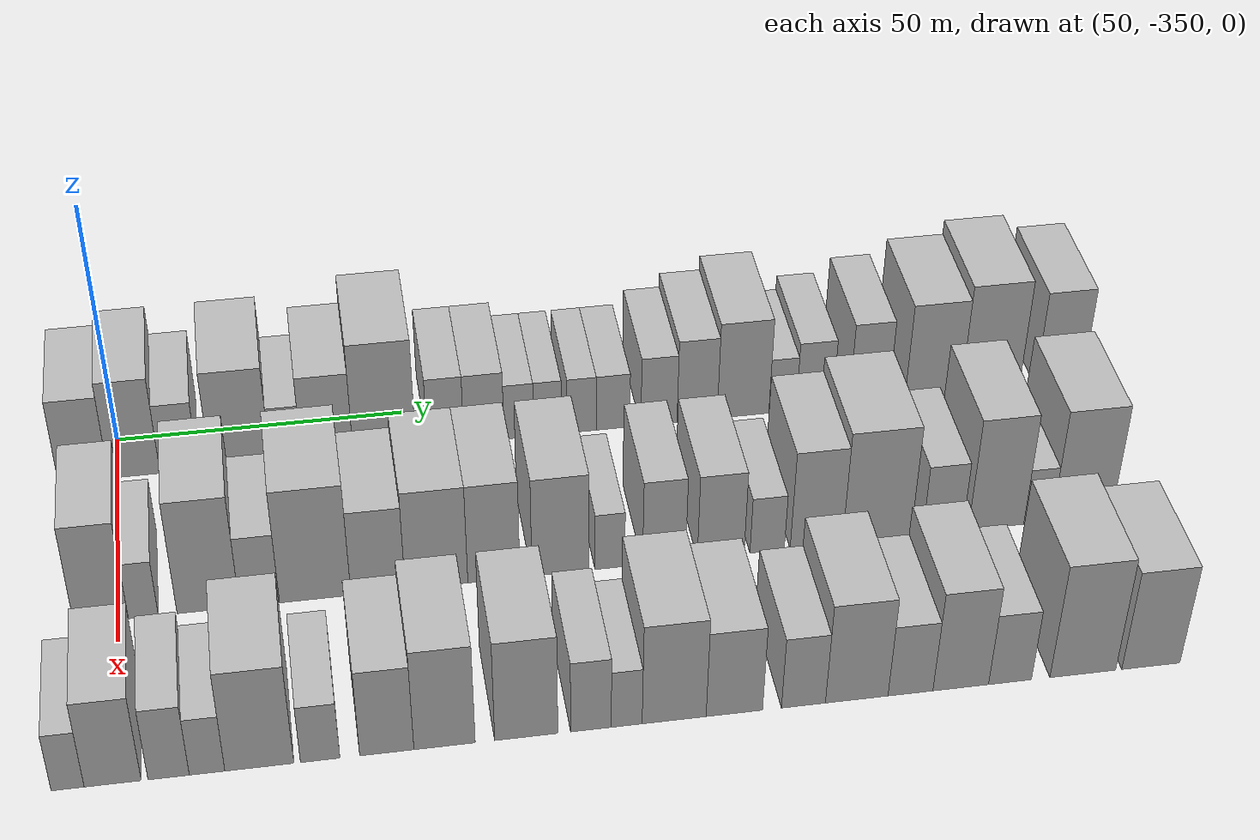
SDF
<sdf version="1.6">
 <world name="default">
  <model name="building_1">
   <static>1</static>
   <pose>50.0000 -355.7108 0 0.000000 0.000000 0.000000</pose>
   <link name="link">
    <pose>0 0 9.00 0 0 0</pose>
    <collision name="collision"><geometry><box><size>20.0000 8.5783 18.0000</size></box></geometry></collision>
    <visual name="visual">
     <cast_shadows>0</cast_shadows>
     <geometry><box><size>20.0000 8.5783 18.0000</size></box></geometry>
     <material>
      <script>
       <uri>model://HANNAS_wall/materials/scripts</uri>
       <uri>model://HANNAS_wall/materials/textures</uri>
       <name>vrc/HANNAS_wall</name>
      </script>
     </material>
    </visual>
   </link>
  </model>
  <model name="building_2">
   <static>1</static>
   <pose>50.0000 -347.0402 0 0.000000 0.000000 0.000000</pose>
   <link name="link">
    <pose>0 0 10.50 0 0 0</pose>
    <collision name="collision"><geometry><box><size>20.0000 8.7629 21.0000</size></box></geometry></collision>
    <visual name="visual">
     <cast_shadows>0</cast_shadows>
     <geometry><box><size>20.0000 8.7629 21.0000</size></box></geometry>
     <material>
      <script>
       <uri>model://HANNAS_wall/materials/scripts</uri>
       <uri>model://HANNAS_wall/materials/textures</uri>
       <name>vrc/HANNAS_wall</name>
      </script>
     </material>
    </visual>
   </link>
  </model>
  <model name="building_3">
   <static>1</static>
   <pose>50.0000 -339.3646 0 0.000000 0.000000 0.000000</pose>
   <link name="link">
    <pose>0 0 7.50 0 0 0</pose>
    <collision name="collision"><geometry><box><size>20.0000 6.5883 15.0000</size></box></geometry></collision>
    <visual name="visual">
     <cast_shadows>0</cast_shadows>
     <geometry><box><size>20.0000 6.5883 15.0000</size></box></geometry>
     <material>
      <script>
       <uri>model://HANNAS_wall/materials/scripts</uri>
       <uri>model://HANNAS_wall/materials/textures</uri>
       <name>vrc/HANNAS_wall</name>
      </script>
     </material>
    </visual>
   </link>
  </model>
  <model name="building_4">
   <static>1</static>
   <pose>50.0000 -328.8616 0 0.000000 0.000000 0.000000</pose>
   <link name="link">
    <pose>0 0 10.50 0 0 0</pose>
    <collision name="collision"><geometry><box><size>20.0000 10.4178 21.0000</size></box></geometry></collision>
    <visual name="visual">
     <cast_shadows>0</cast_shadows>
     <geometry><box><size>20.0000 10.4178 21.0000</size></box></geometry>
     <material>
      <script>
       <uri>model://HANNAS_wall/materials/scripts</uri>
       <uri>model://HANNAS_wall/materials/textures</uri>
       <name>vrc/HANNAS_wall</name>
      </script>
     </material>
    </visual>
   </link>
  </model>
  <model name="building_5">
   <static>1</static>
   <pose>50.0000 -320.9417 0 0.000000 0.000000 0.000000</pose>
   <link name="link">
    <pose>0 0 6.00 0 0 0</pose>
    <collision name="collision"><geometry><box><size>20.0000 5.4220 12.0000</size></box></geometry></collision>
    <visual name="visual">
     <cast_shadows>0</cast_shadows>
     <geometry><box><size>20.0000 5.4220 12.0000</size></box></geometry>
     <material>
      <script>
       <uri>model://HANNAS_wall/materials/scripts</uri>
       <uri>model://HANNAS_wall/materials/textures</uri>
       <name>vrc/HANNAS_wall</name>
      </script>
     </material>
    </visual>
   </link>
  </model>
  <model name="building_6">
   <static>1</static>
   <pose>50.0000 -313.7510 0 0.000000 0.000000 0.000000</pose>
   <link name="link">
    <pose>0 0 9.00 0 0 0</pose>
    <collision name="collision"><geometry><box><size>20.0000 8.9593 18.0000</size></box></geometry></collision>
    <visual name="visual">
     <cast_shadows>0</cast_shadows>
     <geometry><box><size>20.0000 8.9593 18.0000</size></box></geometry>
     <material>
      <script>
       <uri>model://HANNAS_wall/materials/scripts</uri>
       <uri>model://HANNAS_wall/materials/textures</uri>
       <name>vrc/HANNAS_wall</name>
      </script>
     </material>
    </visual>
   </link>
  </model>
  <model name="building_7">
   <static>1</static>
   <pose>50.0000 -303.7959 0 0.000000 0.000000 0.000000</pose>
   <link name="link">
    <pose>0 0 12.00 0 0 0</pose>
    <collision name="collision"><geometry><box><size>20.0000 10.9510 24.0000</size></box></geometry></collision>
    <visual name="visual">
     <cast_shadows>0</cast_shadows>
     <geometry><box><size>20.0000 10.9510 24.0000</size></box></geometry>
     <material>
      <script>
       <uri>model://HANNAS_wall/materials/scripts</uri>
       <uri>model://HANNAS_wall/materials/textures</uri>
       <name>vrc/HANNAS_wall</name>
      </script>
     </material>
    </visual>
   </link>
  </model>
  <model name="building_8">
   <static>1</static>
   <pose>50.0000 -293.0944 0 0.000000 0.000000 0.000000</pose>
   <link name="link">
    <pose>0 0 7.50 0 0 0</pose>
    <collision name="collision"><geometry><box><size>20.0000 6.4519 15.0000</size></box></geometry></collision>
    <visual name="visual">
     <cast_shadows>0</cast_shadows>
     <geometry><box><size>20.0000 6.4519 15.0000</size></box></geometry>
     <material>
      <script>
       <uri>model://HANNAS_wall/materials/scripts</uri>
       <uri>model://HANNAS_wall/materials/textures</uri>
       <name>vrc/HANNAS_wall</name>
      </script>
     </material>
    </visual>
   </link>
  </model>
  <model name="building_9">
   <static>1</static>
   <pose>50.0000 -286.3283 0 0.000000 0.000000 0.000000</pose>
   <link name="link">
    <pose>0 0 7.50 0 0 0</pose>
    <collision name="collision"><geometry><box><size>20.0000 7.0803 15.0000</size></box></geometry></collision>
    <visual name="visual">
     <cast_shadows>0</cast_shadows>
     <geometry><box><size>20.0000 7.0803 15.0000</size></box></geometry>
     <material>
      <script>
       <uri>model://HANNAS_wall/materials/scripts</uri>
       <uri>model://HANNAS_wall/materials/textures</uri>
       <name>vrc/HANNAS_wall</name>
      </script>
     </material>
    </visual>
   </link>
  </model>
  <model name="building_10">
   <static>1</static>
   <pose>50.0000 -280.1579 0 0.000000 0.000000 0.000000</pose>
   <link name="link">
    <pose>0 0 6.00 0 0 0</pose>
    <collision name="collision"><geometry><box><size>20.0000 5.2603 12.0000</size></box></geometry></collision>
    <visual name="visual">
     <cast_shadows>0</cast_shadows>
     <geometry><box><size>20.0000 5.2603 12.0000</size></box></geometry>
     <material>
      <script>
       <uri>model://HANNAS_wall/materials/scripts</uri>
       <uri>model://HANNAS_wall/materials/textures</uri>
       <name>vrc/HANNAS_wall</name>
      </script>
     </material>
    </visual>
   </link>
  </model>
  <model name="building_11">
   <static>1</static>
   <pose>50.0000 -275.0595 0 0.000000 0.000000 0.000000</pose>
   <link name="link">
    <pose>0 0 6.00 0 0 0</pose>
    <collision name="collision"><geometry><box><size>20.0000 4.9366 12.0000</size></box></geometry></collision>
    <visual name="visual">
     <cast_shadows>0</cast_shadows>
     <geometry><box><size>20.0000 4.9366 12.0000</size></box></geometry>
     <material>
      <script>
       <uri>model://HANNAS_wall/materials/scripts</uri>
       <uri>model://HANNAS_wall/materials/textures</uri>
       <name>vrc/HANNAS_wall</name>
      </script>
     </material>
    </visual>
   </link>
  </model>
  <model name="building_12">
   <static>1</static>
   <pose>50.0000 -269.0004 0 0.000000 0.000000 0.000000</pose>
   <link name="link">
    <pose>0 0 6.00 0 0 0</pose>
    <collision name="collision"><geometry><box><size>20.0000 5.1815 12.0000</size></box></geometry></collision>
    <visual name="visual">
     <cast_shadows>0</cast_shadows>
     <geometry><box><size>20.0000 5.1815 12.0000</size></box></geometry>
     <material>
      <script>
       <uri>model://HANNAS_wall/materials/scripts</uri>
       <uri>model://HANNAS_wall/materials/textures</uri>
       <name>vrc/HANNAS_wall</name>
      </script>
     </material>
    </visual>
   </link>
  </model>
  <model name="building_13">
   <static>1</static>
   <pose>50.0000 -263.4154 0 0.000000 0.000000 0.000000</pose>
   <link name="link">
    <pose>0 0 6.00 0 0 0</pose>
    <collision name="collision"><geometry><box><size>20.0000 5.9884 12.0000</size></box></geometry></collision>
    <visual name="visual">
     <cast_shadows>0</cast_shadows>
     <geometry><box><size>20.0000 5.9884 12.0000</size></box></geometry>
     <material>
      <script>
       <uri>model://HANNAS_wall/materials/scripts</uri>
       <uri>model://HANNAS_wall/materials/textures</uri>
       <name>vrc/HANNAS_wall</name>
      </script>
     </material>
    </visual>
   </link>
  </model>
  <model name="building_14">
   <static>1</static>
   <pose>50.0000 -255.1728 0 0.000000 0.000000 0.000000</pose>
   <link name="link">
    <pose>0 0 7.50 0 0 0</pose>
    <collision name="collision"><geometry><box><size>20.0000 6.4968 15.0000</size></box></geometry></collision>
    <visual name="visual">
     <cast_shadows>0</cast_shadows>
     <geometry><box><size>20.0000 6.4968 15.0000</size></box></geometry>
     <material>
      <script>
       <uri>model://HANNAS_wall/materials/scripts</uri>
       <uri>model://HANNAS_wall/materials/textures</uri>
       <name>vrc/HANNAS_wall</name>
      </script>
     </material>
    </visual>
   </link>
  </model>
  <model name="building_15">
   <static>1</static>
   <pose>50.0000 -248.3059 0 0.000000 0.000000 0.000000</pose>
   <link name="link">
    <pose>0 0 9.00 0 0 0</pose>
    <collision name="collision"><geometry><box><size>20.0000 7.2370 18.0000</size></box></geometry></collision>
    <visual name="visual">
     <cast_shadows>0</cast_shadows>
     <geometry><box><size>20.0000 7.2370 18.0000</size></box></geometry>
     <material>
      <script>
       <uri>model://HANNAS_wall/materials/scripts</uri>
       <uri>model://HANNAS_wall/materials/textures</uri>
       <name>vrc/HANNAS_wall</name>
      </script>
     </material>
    </visual>
   </link>
  </model>
  <model name="building_16">
   <static>1</static>
   <pose>50.0000 -240.0128 0 0.000000 0.000000 0.000000</pose>
   <link name="link">
    <pose>0 0 10.50 0 0 0</pose>
    <collision name="collision"><geometry><box><size>20.0000 9.3492 21.0000</size></box></geometry></collision>
    <visual name="visual">
     <cast_shadows>0</cast_shadows>
     <geometry><box><size>20.0000 9.3492 21.0000</size></box></geometry>
     <material>
      <script>
       <uri>model://HANNAS_wall/materials/scripts</uri>
       <uri>model://HANNAS_wall/materials/textures</uri>
       <name>vrc/HANNAS_wall</name>
      </script>
     </material>
    </visual>
   </link>
  </model>
  <model name="building_17">
   <static>1</static>
   <pose>50.0000 -232.8654 0 0.000000 0.000000 0.000000</pose>
   <link name="link">
    <pose>0 0 6.00 0 0 0</pose>
    <collision name="collision"><geometry><box><size>20.0000 4.9455 12.0000</size></box></geometry></collision>
    <visual name="visual">
     <cast_shadows>0</cast_shadows>
     <geometry><box><size>20.0000 4.9455 12.0000</size></box></geometry>
     <material>
      <script>
       <uri>model://HANNAS_wall/materials/scripts</uri>
       <uri>model://HANNAS_wall/materials/textures</uri>
       <name>vrc/HANNAS_wall</name>
      </script>
     </material>
    </visual>
   </link>
  </model>
  <model name="building_18">
   <static>1</static>
   <pose>50.0000 -227.0547 0 0.000000 0.000000 0.000000</pose>
   <link name="link">
    <pose>0 0 7.50 0 0 0</pose>
    <collision name="collision"><geometry><box><size>20.0000 6.6760 15.0000</size></box></geometry></collision>
    <visual name="visual">
     <cast_shadows>0</cast_shadows>
     <geometry><box><size>20.0000 6.6760 15.0000</size></box></geometry>
     <material>
      <script>
       <uri>model://HANNAS_wall/materials/scripts</uri>
       <uri>model://HANNAS_wall/materials/textures</uri>
       <name>vrc/HANNAS_wall</name>
      </script>
     </material>
    </visual>
   </link>
  </model>
  <model name="building_19">
   <static>1</static>
   <pose>50.0000 -217.1015 0 0.000000 0.000000 0.000000</pose>
   <link name="link">
    <pose>0 0 9.00 0 0 0</pose>
    <collision name="collision"><geometry><box><size>20.0000 7.2303 18.0000</size></box></geometry></collision>
    <visual name="visual">
     <cast_shadows>0</cast_shadows>
     <geometry><box><size>20.0000 7.2303 18.0000</size></box></geometry>
     <material>
      <script>
       <uri>model://HANNAS_wall/materials/scripts</uri>
       <uri>model://HANNAS_wall/materials/textures</uri>
       <name>vrc/HANNAS_wall</name>
      </script>
     </material>
    </visual>
   </link>
  </model>
  <model name="building_20">
   <static>1</static>
   <pose>50.0000 -205.3397 0 0.000000 0.000000 0.000000</pose>
   <link name="link">
    <pose>0 0 10.50 0 0 0</pose>
    <collision name="collision"><geometry><box><size>20.0000 10.2934 21.0000</size></box></geometry></collision>
    <visual name="visual">
     <cast_shadows>0</cast_shadows>
     <geometry><box><size>20.0000 10.2934 21.0000</size></box></geometry>
     <material>
      <script>
       <uri>model://HANNAS_wall/materials/scripts</uri>
       <uri>model://HANNAS_wall/materials/textures</uri>
       <name>vrc/HANNAS_wall</name>
      </script>
     </material>
    </visual>
   </link>
  </model>
  <model name="building_21">
   <static>1</static>
   <pose>50.0000 -194.7656 0 0.000000 0.000000 0.000000</pose>
   <link name="link">
    <pose>0 0 12.00 0 0 0</pose>
    <collision name="collision"><geometry><box><size>20.0000 10.8548 24.0000</size></box></geometry></collision>
    <visual name="visual">
     <cast_shadows>0</cast_shadows>
     <geometry><box><size>20.0000 10.8548 24.0000</size></box></geometry>
     <material>
      <script>
       <uri>model://HANNAS_wall/materials/scripts</uri>
       <uri>model://HANNAS_wall/materials/textures</uri>
       <name>vrc/HANNAS_wall</name>
      </script>
     </material>
    </visual>
   </link>
  </model>
  <model name="building_22">
   <static>1</static>
   <pose>50.0000 -181.9417 0 0.000000 0.000000 0.000000</pose>
   <link name="link">
    <pose>0 0 10.50 0 0 0</pose>
    <collision name="collision"><geometry><box><size>20.0000 8.7929 21.0000</size></box></geometry></collision>
    <visual name="visual">
     <cast_shadows>0</cast_shadows>
     <geometry><box><size>20.0000 8.7929 21.0000</size></box></geometry>
     <material>
      <script>
       <uri>model://HANNAS_wall/materials/scripts</uri>
       <uri>model://HANNAS_wall/materials/textures</uri>
       <name>vrc/HANNAS_wall</name>
      </script>
     </material>
    </visual>
   </link>
  </model>
  <model name="building_81">
   <static>1</static>
   <pose>85.0000 -352.6554 0 0.000000 0.000000 0.000000</pose>
   <link name="link">
    <pose>0 0 10.50 0 0 0</pose>
    <collision name="collision"><geometry><box><size>20.0000 8.6892 21.0000</size></box></geometry></collision>
    <visual name="visual">
     <cast_shadows>0</cast_shadows>
     <geometry><box><size>20.0000 8.6892 21.0000</size></box></geometry>
     <material>
      <script>
       <uri>model://HANNAS_wall/materials/scripts</uri>
       <uri>model://HANNAS_wall/materials/textures</uri>
       <name>vrc/HANNAS_wall</name>
      </script>
     </material>
    </visual>
   </link>
  </model>
  <model name="building_82">
   <static>1</static>
   <pose>85.0000 -345.9086 0 0.000000 0.000000 0.000000</pose>
   <link name="link">
    <pose>0 0 6.00 0 0 0</pose>
    <collision name="collision"><geometry><box><size>20.0000 4.8044 12.0000</size></box></geometry></collision>
    <visual name="visual">
     <cast_shadows>0</cast_shadows>
     <geometry><box><size>20.0000 4.8044 12.0000</size></box></geometry>
     <material>
      <script>
       <uri>model://HANNAS_wall/materials/scripts</uri>
       <uri>model://HANNAS_wall/materials/textures</uri>
       <name>vrc/HANNAS_wall</name>
      </script>
     </material>
    </visual>
   </link>
  </model>
  <model name="building_83">
   <static>1</static>
   <pose>85.0000 -335.4656 0 0.000000 0.000000 0.000000</pose>
   <link name="link">
    <pose>0 0 12.00 0 0 0</pose>
    <collision name="collision"><geometry><box><size>20.0000 10.0815 24.0000</size></box></geometry></collision>
    <visual name="visual">
     <cast_shadows>0</cast_shadows>
     <geometry><box><size>20.0000 10.0815 24.0000</size></box></geometry>
     <material>
      <script>
       <uri>model://HANNAS_wall/materials/scripts</uri>
       <uri>model://HANNAS_wall/materials/textures</uri>
       <name>vrc/HANNAS_wall</name>
      </script>
     </material>
    </visual>
   </link>
  </model>
  <model name="building_84">
   <static>1</static>
   <pose>85.0000 -327.1927 0 0.000000 0.000000 0.000000</pose>
   <link name="link">
    <pose>0 0 7.50 0 0 0</pose>
    <collision name="collision"><geometry><box><size>20.0000 6.4643 15.0000</size></box></geometry></collision>
    <visual name="visual">
     <cast_shadows>0</cast_shadows>
     <geometry><box><size>20.0000 6.4643 15.0000</size></box></geometry>
     <material>
      <script>
       <uri>model://HANNAS_wall/materials/scripts</uri>
       <uri>model://HANNAS_wall/materials/textures</uri>
       <name>vrc/HANNAS_wall</name>
      </script>
     </material>
    </visual>
   </link>
  </model>
  <model name="building_85">
   <static>1</static>
   <pose>85.0000 -318.1513 0 0.000000 0.000000 0.000000</pose>
   <link name="link">
    <pose>0 0 12.00 0 0 0</pose>
    <collision name="collision"><geometry><box><size>20.0000 11.6183 24.0000</size></box></geometry></collision>
    <visual name="visual">
     <cast_shadows>0</cast_shadows>
     <geometry><box><size>20.0000 11.6183 24.0000</size></box></geometry>
     <material>
      <script>
       <uri>model://HANNAS_wall/materials/scripts</uri>
       <uri>model://HANNAS_wall/materials/textures</uri>
       <name>vrc/HANNAS_wall</name>
      </script>
     </material>
    </visual>
   </link>
  </model>
  <model name="building_86">
   <static>1</static>
   <pose>85.0000 -307.8982 0 0.000000 0.000000 0.000000</pose>
   <link name="link">
    <pose>0 0 9.00 0 0 0</pose>
    <collision name="collision"><geometry><box><size>20.0000 8.8880 18.0000</size></box></geometry></collision>
    <visual name="visual">
     <cast_shadows>0</cast_shadows>
     <geometry><box><size>20.0000 8.8880 18.0000</size></box></geometry>
     <material>
      <script>
       <uri>model://HANNAS_wall/materials/scripts</uri>
       <uri>model://HANNAS_wall/materials/textures</uri>
       <name>vrc/HANNAS_wall</name>
      </script>
     </material>
    </visual>
   </link>
  </model>
  <model name="building_87">
   <static>1</static>
   <pose>85.0000 -298.3016 0 0.000000 0.000000 0.000000</pose>
   <link name="link">
    <pose>0 0 10.50 0 0 0</pose>
    <collision name="collision"><geometry><box><size>20.0000 10.3052 21.0000</size></box></geometry></collision>
    <visual name="visual">
     <cast_shadows>0</cast_shadows>
     <geometry><box><size>20.0000 10.3052 21.0000</size></box></geometry>
     <material>
      <script>
       <uri>model://HANNAS_wall/materials/scripts</uri>
       <uri>model://HANNAS_wall/materials/textures</uri>
       <name>vrc/HANNAS_wall</name>
      </script>
     </material>
    </visual>
   </link>
  </model>
  <model name="building_88">
   <static>1</static>
   <pose>85.0000 -288.8465 0 0.000000 0.000000 0.000000</pose>
   <link name="link">
    <pose>0 0 10.50 0 0 0</pose>
    <collision name="collision"><geometry><box><size>20.0000 8.6051 21.0000</size></box></geometry></collision>
    <visual name="visual">
     <cast_shadows>0</cast_shadows>
     <geometry><box><size>20.0000 8.6051 21.0000</size></box></geometry>
     <material>
      <script>
       <uri>model://HANNAS_wall/materials/scripts</uri>
       <uri>model://HANNAS_wall/materials/textures</uri>
       <name>vrc/HANNAS_wall</name>
      </script>
     </material>
    </visual>
   </link>
  </model>
  <model name="building_89">
   <static>1</static>
   <pose>85.0000 -277.7893 0 0.000000 0.000000 0.000000</pose>
   <link name="link">
    <pose>0 0 10.50 0 0 0</pose>
    <collision name="collision"><geometry><box><size>20.0000 9.5093 21.0000</size></box></geometry></collision>
    <visual name="visual">
     <cast_shadows>0</cast_shadows>
     <geometry><box><size>20.0000 9.5093 21.0000</size></box></geometry>
     <material>
      <script>
       <uri>model://HANNAS_wall/materials/scripts</uri>
       <uri>model://HANNAS_wall/materials/textures</uri>
       <name>vrc/HANNAS_wall</name>
      </script>
     </material>
    </visual>
   </link>
  </model>
  <model name="building_90">
   <static>1</static>
   <pose>85.0000 -269.5554 0 0.000000 0.000000 0.000000</pose>
   <link name="link">
    <pose>0 0 6.00 0 0 0</pose>
    <collision name="collision"><geometry><box><size>20.0000 4.9585 12.0000</size></box></geometry></collision>
    <visual name="visual">
     <cast_shadows>0</cast_shadows>
     <geometry><box><size>20.0000 4.9585 12.0000</size></box></geometry>
     <material>
      <script>
       <uri>model://HANNAS_wall/materials/scripts</uri>
       <uri>model://HANNAS_wall/materials/textures</uri>
       <name>vrc/HANNAS_wall</name>
      </script>
     </material>
    </visual>
   </link>
  </model>
  <model name="building_91">
   <static>1</static>
   <pose>85.0000 -260.4645 0 0.000000 0.000000 0.000000</pose>
   <link name="link">
    <pose>0 0 9.00 0 0 0</pose>
    <collision name="collision"><geometry><box><size>20.0000 7.2233 18.0000</size></box></geometry></collision>
    <visual name="visual">
     <cast_shadows>0</cast_shadows>
     <geometry><box><size>20.0000 7.2233 18.0000</size></box></geometry>
     <material>
      <script>
       <uri>model://HANNAS_wall/materials/scripts</uri>
       <uri>model://HANNAS_wall/materials/textures</uri>
       <name>vrc/HANNAS_wall</name>
      </script>
     </material>
    </visual>
   </link>
  </model>
  <model name="building_92">
   <static>1</static>
   <pose>85.0000 -250.8988 0 0.000000 0.000000 0.000000</pose>
   <link name="link">
    <pose>0 0 9.00 0 0 0</pose>
    <collision name="collision"><geometry><box><size>20.0000 7.9082 18.0000</size></box></geometry></collision>
    <visual name="visual">
     <cast_shadows>0</cast_shadows>
     <geometry><box><size>20.0000 7.9082 18.0000</size></box></geometry>
     <material>
      <script>
       <uri>model://HANNAS_wall/materials/scripts</uri>
       <uri>model://HANNAS_wall/materials/textures</uri>
       <name>vrc/HANNAS_wall</name>
      </script>
     </material>
    </visual>
   </link>
  </model>
  <model name="building_93">
   <static>1</static>
   <pose>85.0000 -243.0256 0 0.000000 0.000000 0.000000</pose>
   <link name="link">
    <pose>0 0 6.00 0 0 0</pose>
    <collision name="collision"><geometry><box><size>20.0000 5.8380 12.0000</size></box></geometry></collision>
    <visual name="visual">
     <cast_shadows>0</cast_shadows>
     <geometry><box><size>20.0000 5.8380 12.0000</size></box></geometry>
     <material>
      <script>
       <uri>model://HANNAS_wall/materials/scripts</uri>
       <uri>model://HANNAS_wall/materials/textures</uri>
       <name>vrc/HANNAS_wall</name>
      </script>
     </material>
    </visual>
   </link>
  </model>
  <model name="building_94">
   <static>1</static>
   <pose>85.0000 -234.6492 0 0.000000 0.000000 0.000000</pose>
   <link name="link">
    <pose>0 0 10.50 0 0 0</pose>
    <collision name="collision"><geometry><box><size>20.0000 8.9148 21.0000</size></box></geometry></collision>
    <visual name="visual">
     <cast_shadows>0</cast_shadows>
     <geometry><box><size>20.0000 8.9148 21.0000</size></box></geometry>
     <material>
      <script>
       <uri>model://HANNAS_wall/materials/scripts</uri>
       <uri>model://HANNAS_wall/materials/textures</uri>
       <name>vrc/HANNAS_wall</name>
      </script>
     </material>
    </visual>
   </link>
  </model>
  <model name="building_95">
   <static>1</static>
   <pose>85.0000 -224.3128 0 0.000000 0.000000 0.000000</pose>
   <link name="link">
    <pose>0 0 12.00 0 0 0</pose>
    <collision name="collision"><geometry><box><size>20.0000 11.7582 24.0000</size></box></geometry></collision>
    <visual name="visual">
     <cast_shadows>0</cast_shadows>
     <geometry><box><size>20.0000 11.7582 24.0000</size></box></geometry>
     <material>
      <script>
       <uri>model://HANNAS_wall/materials/scripts</uri>
       <uri>model://HANNAS_wall/materials/textures</uri>
       <name>vrc/HANNAS_wall</name>
      </script>
     </material>
    </visual>
   </link>
  </model>
  <model name="building_96">
   <static>1</static>
   <pose>85.0000 -212.9728 0 0.000000 0.000000 0.000000</pose>
   <link name="link">
    <pose>0 0 7.50 0 0 0</pose>
    <collision name="collision"><geometry><box><size>20.0000 6.9217 15.0000</size></box></geometry></collision>
    <visual name="visual">
     <cast_shadows>0</cast_shadows>
     <geometry><box><size>20.0000 6.9217 15.0000</size></box></geometry>
     <material>
      <script>
       <uri>model://HANNAS_wall/materials/scripts</uri>
       <uri>model://HANNAS_wall/materials/textures</uri>
       <name>vrc/HANNAS_wall</name>
      </script>
     </material>
    </visual>
   </link>
  </model>
  <model name="building_97">
   <static>1</static>
   <pose>85.0000 -203.6924 0 0.000000 0.000000 0.000000</pose>
   <link name="link">
    <pose>0 0 12.00 0 0 0</pose>
    <collision name="collision"><geometry><box><size>20.0000 9.6392 24.0000</size></box></geometry></collision>
    <visual name="visual">
     <cast_shadows>0</cast_shadows>
     <geometry><box><size>20.0000 9.6392 24.0000</size></box></geometry>
     <material>
      <script>
       <uri>model://HANNAS_wall/materials/scripts</uri>
       <uri>model://HANNAS_wall/materials/textures</uri>
       <name>vrc/HANNAS_wall</name>
      </script>
     </material>
    </visual>
   </link>
  </model>
  <model name="building_98">
   <static>1</static>
   <pose>85.0000 -196.4237 0 0.000000 0.000000 0.000000</pose>
   <link name="link">
    <pose>0 0 6.00 0 0 0</pose>
    <collision name="collision"><geometry><box><size>20.0000 4.8981 12.0000</size></box></geometry></collision>
    <visual name="visual">
     <cast_shadows>0</cast_shadows>
     <geometry><box><size>20.0000 4.8981 12.0000</size></box></geometry>
     <material>
      <script>
       <uri>model://HANNAS_wall/materials/scripts</uri>
       <uri>model://HANNAS_wall/materials/textures</uri>
       <name>vrc/HANNAS_wall</name>
      </script>
     </material>
    </visual>
   </link>
  </model>
  <model name="building_99">
   <static>1</static>
   <pose>85.0000 -188.7379 0 0.000000 0.000000 0.000000</pose>
   <link name="link">
    <pose>0 0 12.00 0 0 0</pose>
    <collision name="collision"><geometry><box><size>20.0000 10.4735 24.0000</size></box></geometry></collision>
    <visual name="visual">
     <cast_shadows>0</cast_shadows>
     <geometry><box><size>20.0000 10.4735 24.0000</size></box></geometry>
     <material>
      <script>
       <uri>model://HANNAS_wall/materials/scripts</uri>
       <uri>model://HANNAS_wall/materials/textures</uri>
       <name>vrc/HANNAS_wall</name>
      </script>
     </material>
    </visual>
   </link>
  </model>
  <model name="building_164">
   <static>1</static>
   <pose>120.0000 -357.5559 0 0.000000 0.000000 0.000000</pose>
   <link name="link">
    <pose>0 0 6.00 0 0 0</pose>
    <collision name="collision"><geometry><box><size>20.0000 4.8882 12.0000</size></box></geometry></collision>
    <visual name="visual">
     <cast_shadows>0</cast_shadows>
     <geometry><box><size>20.0000 4.8882 12.0000</size></box></geometry>
     <material>
      <script>
       <uri>model://HANNAS_wall/materials/scripts</uri>
       <uri>model://HANNAS_wall/materials/textures</uri>
       <name>vrc/HANNAS_wall</name>
      </script>
     </material>
    </visual>
   </link>
  </model>
  <model name="building_165">
   <static>1</static>
   <pose>120.0000 -350.8604 0 0.000000 0.000000 0.000000</pose>
   <link name="link">
    <pose>0 0 9.00 0 0 0</pose>
    <collision name="collision"><geometry><box><size>20.0000 8.5029 18.0000</size></box></geometry></collision>
    <visual name="visual">
     <cast_shadows>0</cast_shadows>
     <geometry><box><size>20.0000 8.5029 18.0000</size></box></geometry>
     <material>
      <script>
       <uri>model://HANNAS_wall/materials/scripts</uri>
       <uri>model://HANNAS_wall/materials/textures</uri>
       <name>vrc/HANNAS_wall</name>
      </script>
     </material>
    </visual>
   </link>
  </model>
  <model name="building_166">
   <static>1</static>
   <pose>120.0000 -342.5191 0 0.000000 0.000000 0.000000</pose>
   <link name="link">
    <pose>0 0 7.50 0 0 0</pose>
    <collision name="collision"><geometry><box><size>20.0000 6.1798 15.0000</size></box></geometry></collision>
    <visual name="visual">
     <cast_shadows>0</cast_shadows>
     <geometry><box><size>20.0000 6.1798 15.0000</size></box></geometry>
     <material>
      <script>
       <uri>model://HANNAS_wall/materials/scripts</uri>
       <uri>model://HANNAS_wall/materials/textures</uri>
       <name>vrc/HANNAS_wall</name>
      </script>
     </material>
    </visual>
   </link>
  </model>
  <model name="building_167">
   <static>1</static>
   <pose>120.0000 -336.7616 0 0.000000 0.000000 0.000000</pose>
   <link name="link">
    <pose>0 0 6.00 0 0 0</pose>
    <collision name="collision"><geometry><box><size>20.0000 5.3350 12.0000</size></box></geometry></collision>
    <visual name="visual">
     <cast_shadows>0</cast_shadows>
     <geometry><box><size>20.0000 5.3350 12.0000</size></box></geometry>
     <material>
      <script>
       <uri>model://HANNAS_wall/materials/scripts</uri>
       <uri>model://HANNAS_wall/materials/textures</uri>
       <name>vrc/HANNAS_wall</name>
      </script>
     </material>
    </visual>
   </link>
  </model>
  <model name="building_168">
   <static>1</static>
   <pose>120.0000 -328.8896 0 0.000000 0.000000 0.000000</pose>
   <link name="link">
    <pose>0 0 10.50 0 0 0</pose>
    <collision name="collision"><geometry><box><size>20.0000 10.4089 21.0000</size></box></geometry></collision>
    <visual name="visual">
     <cast_shadows>0</cast_shadows>
     <geometry><box><size>20.0000 10.4089 21.0000</size></box></geometry>
     <material>
      <script>
       <uri>model://HANNAS_wall/materials/scripts</uri>
       <uri>model://HANNAS_wall/materials/textures</uri>
       <name>vrc/HANNAS_wall</name>
      </script>
     </material>
    </visual>
   </link>
  </model>
  <model name="building_169">
   <static>1</static>
   <pose>120.0000 -319.6894 0 0.000000 0.000000 0.000000</pose>
   <link name="link">
    <pose>0 0 6.00 0 0 0</pose>
    <collision name="collision"><geometry><box><size>20.0000 5.9915 12.0000</size></box></geometry></collision>
    <visual name="visual">
     <cast_shadows>0</cast_shadows>
     <geometry><box><size>20.0000 5.9915 12.0000</size></box></geometry>
     <material>
      <script>
       <uri>model://HANNAS_wall/materials/scripts</uri>
       <uri>model://HANNAS_wall/materials/textures</uri>
       <name>vrc/HANNAS_wall</name>
      </script>
     </material>
    </visual>
   </link>
  </model>
  <model name="building_170">
   <static>1</static>
   <pose>120.0000 -309.5520 0 0.000000 0.000000 0.000000</pose>
   <link name="link">
    <pose>0 0 9.00 0 0 0</pose>
    <collision name="collision"><geometry><box><size>20.0000 8.2835 18.0000</size></box></geometry></collision>
    <visual name="visual">
     <cast_shadows>0</cast_shadows>
     <geometry><box><size>20.0000 8.2835 18.0000</size></box></geometry>
     <material>
      <script>
       <uri>model://HANNAS_wall/materials/scripts</uri>
       <uri>model://HANNAS_wall/materials/textures</uri>
       <name>vrc/HANNAS_wall</name>
      </script>
     </material>
    </visual>
   </link>
  </model>
  <model name="building_171">
   <static>1</static>
   <pose>120.0000 -300.7069 0 0.000000 0.000000 0.000000</pose>
   <link name="link">
    <pose>0 0 10.50 0 0 0</pose>
    <collision name="collision"><geometry><box><size>20.0000 9.4067 21.0000</size></box></geometry></collision>
    <visual name="visual">
     <cast_shadows>0</cast_shadows>
     <geometry><box><size>20.0000 9.4067 21.0000</size></box></geometry>
     <material>
      <script>
       <uri>model://HANNAS_wall/materials/scripts</uri>
       <uri>model://HANNAS_wall/materials/textures</uri>
       <name>vrc/HANNAS_wall</name>
      </script>
     </material>
    </visual>
   </link>
  </model>
  <model name="building_172">
   <static>1</static>
   <pose>120.0000 -288.1186 0 0.000000 0.000000 0.000000</pose>
   <link name="link">
    <pose>0 0 10.50 0 0 0</pose>
    <collision name="collision"><geometry><box><size>20.0000 9.7699 21.0000</size></box></geometry></collision>
    <visual name="visual">
     <cast_shadows>0</cast_shadows>
     <geometry><box><size>20.0000 9.7699 21.0000</size></box></geometry>
     <material>
      <script>
       <uri>model://HANNAS_wall/materials/scripts</uri>
       <uri>model://HANNAS_wall/materials/textures</uri>
       <name>vrc/HANNAS_wall</name>
      </script>
     </material>
    </visual>
   </link>
  </model>
  <model name="building_173">
   <static>1</static>
   <pose>120.0000 -278.0820 0 0.000000 0.000000 0.000000</pose>
   <link name="link">
    <pose>0 0 7.50 0 0 0</pose>
    <collision name="collision"><geometry><box><size>20.0000 6.3033 15.0000</size></box></geometry></collision>
    <visual name="visual">
     <cast_shadows>0</cast_shadows>
     <geometry><box><size>20.0000 6.3033 15.0000</size></box></geometry>
     <material>
      <script>
       <uri>model://HANNAS_wall/materials/scripts</uri>
       <uri>model://HANNAS_wall/materials/textures</uri>
       <name>vrc/HANNAS_wall</name>
      </script>
     </material>
    </visual>
   </link>
  </model>
  <model name="building_174">
   <static>1</static>
   <pose>120.0000 -272.5147 0 0.000000 0.000000 0.000000</pose>
   <link name="link">
    <pose>0 0 6.00 0 0 0</pose>
    <collision name="collision"><geometry><box><size>20.0000 4.8313 12.0000</size></box></geometry></collision>
    <visual name="visual">
     <cast_shadows>0</cast_shadows>
     <geometry><box><size>20.0000 4.8313 12.0000</size></box></geometry>
     <material>
      <script>
       <uri>model://HANNAS_wall/materials/scripts</uri>
       <uri>model://HANNAS_wall/materials/textures</uri>
       <name>vrc/HANNAS_wall</name>
      </script>
     </material>
    </visual>
   </link>
  </model>
  <model name="building_175">
   <static>1</static>
   <pose>120.0000 -265.0718 0 0.000000 0.000000 0.000000</pose>
   <link name="link">
    <pose>0 0 10.50 0 0 0</pose>
    <collision name="collision"><geometry><box><size>20.0000 10.0546 21.0000</size></box></geometry></collision>
    <visual name="visual">
     <cast_shadows>0</cast_shadows>
     <geometry><box><size>20.0000 10.0546 21.0000</size></box></geometry>
     <material>
      <script>
       <uri>model://HANNAS_wall/materials/scripts</uri>
       <uri>model://HANNAS_wall/materials/textures</uri>
       <name>vrc/HANNAS_wall</name>
      </script>
     </material>
    </visual>
   </link>
  </model>
  <model name="building_176">
   <static>1</static>
   <pose>120.0000 -255.5959 0 0.000000 0.000000 0.000000</pose>
   <link name="link">
    <pose>0 0 9.00 0 0 0</pose>
    <collision name="collision"><geometry><box><size>20.0000 8.8972 18.0000</size></box></geometry></collision>
    <visual name="visual">
     <cast_shadows>0</cast_shadows>
     <geometry><box><size>20.0000 8.8972 18.0000</size></box></geometry>
     <material>
      <script>
       <uri>model://HANNAS_wall/materials/scripts</uri>
       <uri>model://HANNAS_wall/materials/textures</uri>
       <name>vrc/HANNAS_wall</name>
      </script>
     </material>
    </visual>
   </link>
  </model>
  <model name="building_177">
   <static>1</static>
   <pose>120.0000 -244.6522 0 0.000000 0.000000 0.000000</pose>
   <link name="link">
    <pose>0 0 7.50 0 0 0</pose>
    <collision name="collision"><geometry><box><size>20.0000 6.9901 15.0000</size></box></geometry></collision>
    <visual name="visual">
     <cast_shadows>0</cast_shadows>
     <geometry><box><size>20.0000 6.9901 15.0000</size></box></geometry>
     <material>
      <script>
       <uri>model://HANNAS_wall/materials/scripts</uri>
       <uri>model://HANNAS_wall/materials/textures</uri>
       <name>vrc/HANNAS_wall</name>
      </script>
     </material>
    </visual>
   </link>
  </model>
  <model name="building_178">
   <static>1</static>
   <pose>120.0000 -236.1565 0 0.000000 0.000000 0.000000</pose>
   <link name="link">
    <pose>0 0 10.50 0 0 0</pose>
    <collision name="collision"><geometry><box><size>20.0000 10.0014 21.0000</size></box></geometry></collision>
    <visual name="visual">
     <cast_shadows>0</cast_shadows>
     <geometry><box><size>20.0000 10.0014 21.0000</size></box></geometry>
     <material>
      <script>
       <uri>model://HANNAS_wall/materials/scripts</uri>
       <uri>model://HANNAS_wall/materials/textures</uri>
       <name>vrc/HANNAS_wall</name>
      </script>
     </material>
    </visual>
   </link>
  </model>
  <model name="building_179">
   <static>1</static>
   <pose>120.0000 -227.5519 0 0.000000 0.000000 0.000000</pose>
   <link name="link">
    <pose>0 0 7.50 0 0 0</pose>
    <collision name="collision"><geometry><box><size>20.0000 7.2078 15.0000</size></box></geometry></collision>
    <visual name="visual">
     <cast_shadows>0</cast_shadows>
     <geometry><box><size>20.0000 7.2078 15.0000</size></box></geometry>
     <material>
      <script>
       <uri>model://HANNAS_wall/materials/scripts</uri>
       <uri>model://HANNAS_wall/materials/textures</uri>
       <name>vrc/HANNAS_wall</name>
      </script>
     </material>
    </visual>
   </link>
  </model>
  <model name="building_180">
   <static>1</static>
   <pose>120.0000 -219.4546 0 0.000000 0.000000 0.000000</pose>
   <link name="link">
    <pose>0 0 10.50 0 0 0</pose>
    <collision name="collision"><geometry><box><size>20.0000 8.9866 21.0000</size></box></geometry></collision>
    <visual name="visual">
     <cast_shadows>0</cast_shadows>
     <geometry><box><size>20.0000 8.9866 21.0000</size></box></geometry>
     <material>
      <script>
       <uri>model://HANNAS_wall/materials/scripts</uri>
       <uri>model://HANNAS_wall/materials/textures</uri>
       <name>vrc/HANNAS_wall</name>
      </script>
     </material>
    </visual>
   </link>
  </model>
  <model name="building_181">
   <static>1</static>
   <pose>120.0000 -211.4799 0 0.000000 0.000000 0.000000</pose>
   <link name="link">
    <pose>0 0 7.50 0 0 0</pose>
    <collision name="collision"><geometry><box><size>20.0000 6.9629 15.0000</size></box></geometry></collision>
    <visual name="visual">
     <cast_shadows>0</cast_shadows>
     <geometry><box><size>20.0000 6.9629 15.0000</size></box></geometry>
     <material>
      <script>
       <uri>model://HANNAS_wall/materials/scripts</uri>
       <uri>model://HANNAS_wall/materials/textures</uri>
       <name>vrc/HANNAS_wall</name>
      </script>
     </material>
    </visual>
   </link>
  </model>
  <model name="building_182">
   <static>1</static>
   <pose>120.0000 -199.6238 0 0.000000 0.000000 0.000000</pose>
   <link name="link">
    <pose>0 0 12.00 0 0 0</pose>
    <collision name="collision"><geometry><box><size>20.0000 10.7491 24.0000</size></box></geometry></collision>
    <visual name="visual">
     <cast_shadows>0</cast_shadows>
     <geometry><box><size>20.0000 10.7491 24.0000</size></box></geometry>
     <material>
      <script>
       <uri>model://HANNAS_wall/materials/scripts</uri>
       <uri>model://HANNAS_wall/materials/textures</uri>
       <name>vrc/HANNAS_wall</name>
      </script>
     </material>
    </visual>
   </link>
  </model>
  <model name="building_183">
   <static>1</static>
   <pose>120.0000 -188.4671 0 0.000000 0.000000 0.000000</pose>
   <link name="link">
    <pose>0 0 10.50 0 0 0</pose>
    <collision name="collision"><geometry><box><size>20.0000 9.5642 21.0000</size></box></geometry></collision>
    <visual name="visual">
     <cast_shadows>0</cast_shadows>
     <geometry><box><size>20.0000 9.5642 21.0000</size></box></geometry>
     <material>
      <script>
       <uri>model://HANNAS_wall/materials/scripts</uri>
       <uri>model://HANNAS_wall/materials/textures</uri>
       <name>vrc/HANNAS_wall</name>
      </script>
     </material>
    </visual>
   </link>
  </model>
 </world>
</sdf>
